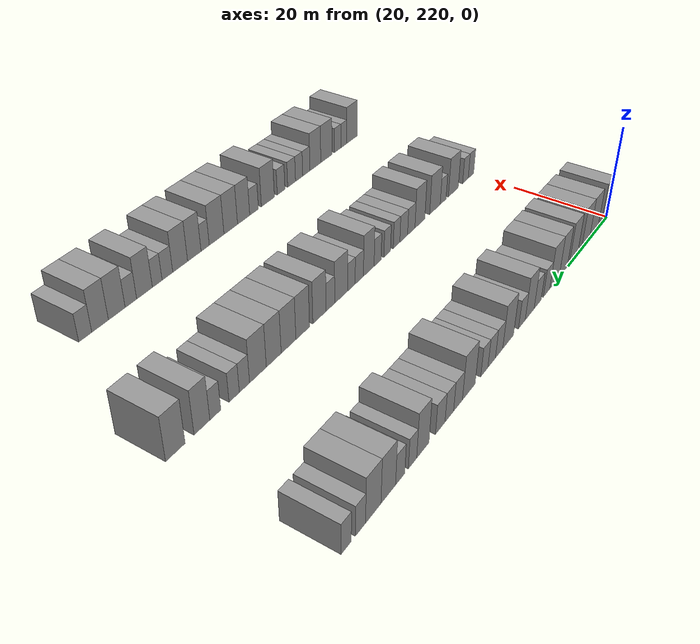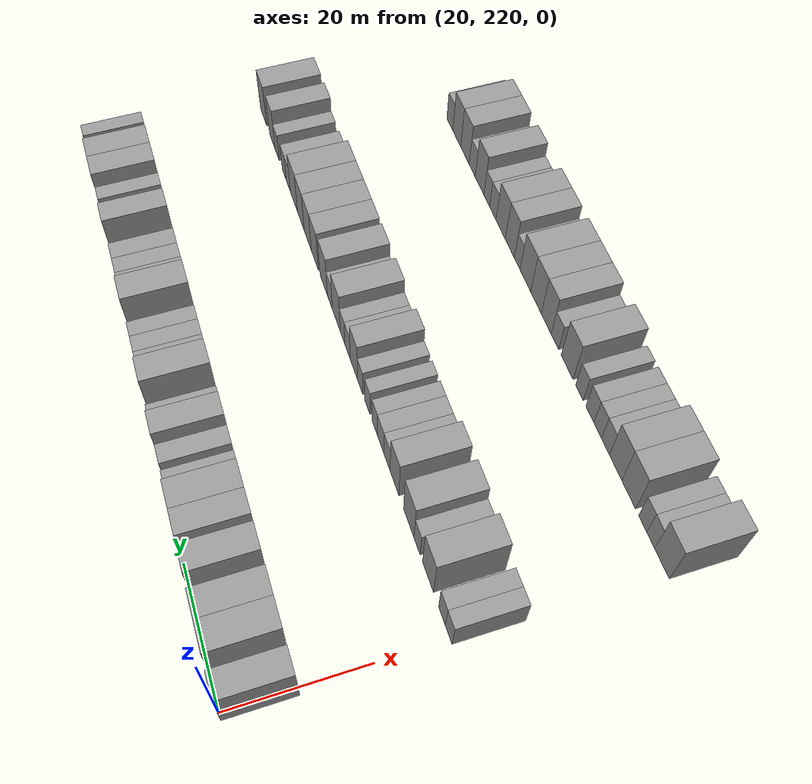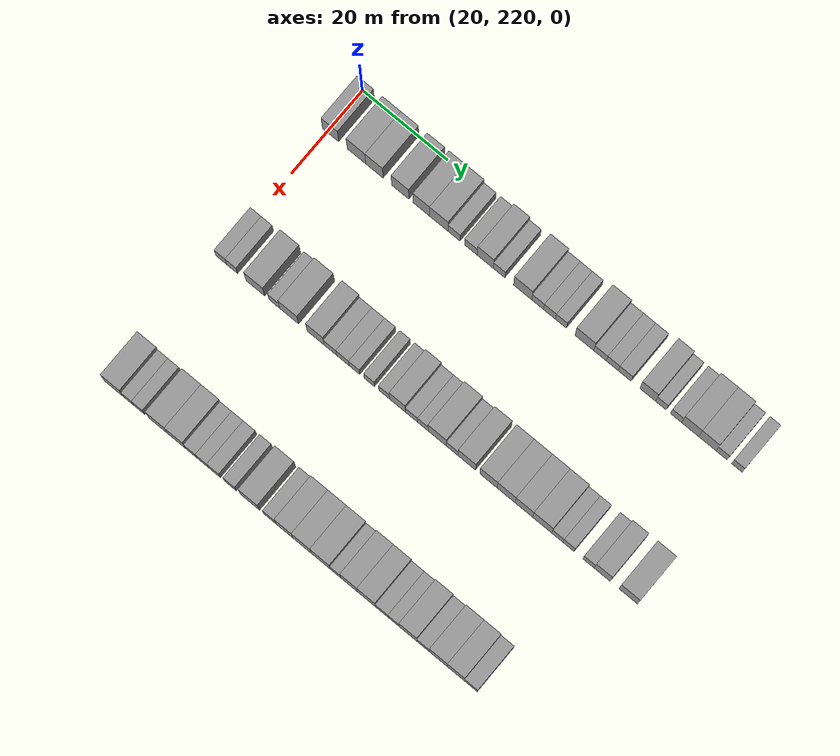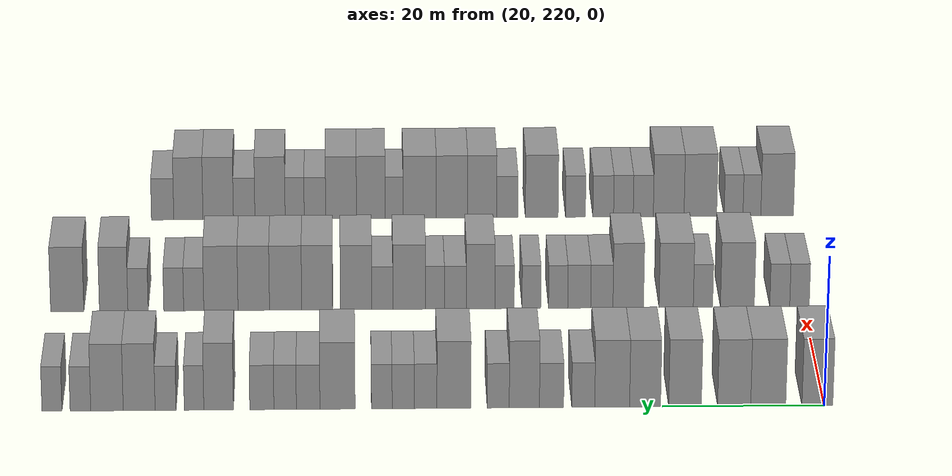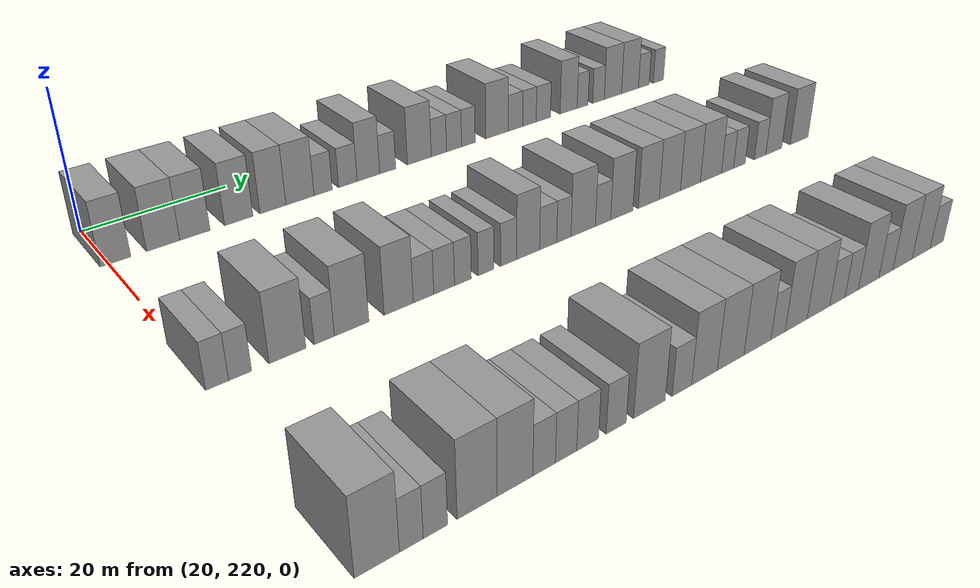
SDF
<sdf version="1.6">
 <world name="default">
  <model name="building_177">
   <static>1</static>
   <pose>25.0000 220.9204 0 0.000000 0.000000 0.000000</pose>
   <link name="link">
    <pose>0 0 4.50 0 0 0</pose>
    <collision name="collision"><geometry><box><size>10.0000 3.8029 9.0000</size></box></geometry></collision>
    <visual name="visual">
     <cast_shadows>0</cast_shadows>
     <geometry><box><size>10.0000 3.8029 9.0000</size></box></geometry>
     <material>
      <script>
       <uri>model://grey_wall/materials/scripts</uri>
       <uri>model://grey_wall/materials/textures</uri>
       <name>vrc/grey_wall</name>
      </script>
     </material>
    </visual>
   </link>
  </model>
  <model name="building_178">
   <static>1</static>
   <pose>25.0000 226.9856 0 0.000000 0.000000 0.000000</pose>
   <link name="link">
    <pose>0 0 4.50 0 0 0</pose>
    <collision name="collision"><geometry><box><size>10.0000 4.3275 9.0000</size></box></geometry></collision>
    <visual name="visual">
     <cast_shadows>0</cast_shadows>
     <geometry><box><size>10.0000 4.3275 9.0000</size></box></geometry>
     <material>
      <script>
       <uri>model://grey_wall/materials/scripts</uri>
       <uri>model://grey_wall/materials/textures</uri>
       <name>vrc/grey_wall</name>
      </script>
     </material>
    </visual>
   </link>
  </model>
  <model name="building_179">
   <static>1</static>
   <pose>25.0000 231.1897 0 0.000000 0.000000 0.000000</pose>
   <link name="link">
    <pose>0 0 4.50 0 0 0</pose>
    <collision name="collision"><geometry><box><size>10.0000 4.0806 9.0000</size></box></geometry></collision>
    <visual name="visual">
     <cast_shadows>0</cast_shadows>
     <geometry><box><size>10.0000 4.0806 9.0000</size></box></geometry>
     <material>
      <script>
       <uri>model://grey_wall/materials/scripts</uri>
       <uri>model://grey_wall/materials/textures</uri>
       <name>vrc/grey_wall</name>
      </script>
     </material>
    </visual>
   </link>
  </model>
  <model name="building_180">
   <static>1</static>
   <pose>25.0000 237.2449 0 0.000000 0.000000 0.000000</pose>
   <link name="link">
    <pose>0 0 4.50 0 0 0</pose>
    <collision name="collision"><geometry><box><size>10.0000 4.0298 9.0000</size></box></geometry></collision>
    <visual name="visual">
     <cast_shadows>0</cast_shadows>
     <geometry><box><size>10.0000 4.0298 9.0000</size></box></geometry>
     <material>
      <script>
       <uri>model://grey_wall/materials/scripts</uri>
       <uri>model://grey_wall/materials/textures</uri>
       <name>vrc/grey_wall</name>
      </script>
     </material>
    </visual>
   </link>
  </model>
  <model name="building_181">
   <static>1</static>
   <pose>25.0000 242.1710 0 0.000000 0.000000 0.000000</pose>
   <link name="link">
    <pose>0 0 4.50 0 0 0</pose>
    <collision name="collision"><geometry><box><size>10.0000 3.8224 9.0000</size></box></geometry></collision>
    <visual name="visual">
     <cast_shadows>0</cast_shadows>
     <geometry><box><size>10.0000 3.8224 9.0000</size></box></geometry>
     <material>
      <script>
       <uri>model://grey_wall/materials/scripts</uri>
       <uri>model://grey_wall/materials/textures</uri>
       <name>vrc/grey_wall</name>
      </script>
     </material>
    </visual>
   </link>
  </model>
  <model name="building_182">
   <static>1</static>
   <pose>25.0000 246.2288 0 0.000000 0.000000 0.000000</pose>
   <link name="link">
    <pose>0 0 4.50 0 0 0</pose>
    <collision name="collision"><geometry><box><size>10.0000 4.2931 9.0000</size></box></geometry></collision>
    <visual name="visual">
     <cast_shadows>0</cast_shadows>
     <geometry><box><size>10.0000 4.2931 9.0000</size></box></geometry>
     <material>
      <script>
       <uri>model://grey_wall/materials/scripts</uri>
       <uri>model://grey_wall/materials/textures</uri>
       <name>vrc/grey_wall</name>
      </script>
     </material>
    </visual>
   </link>
  </model>
  <model name="building_183">
   <static>1</static>
   <pose>25.0000 249.7904 0 0.000000 0.000000 0.000000</pose>
   <link name="link">
    <pose>0 0 3.00 0 0 0</pose>
    <collision name="collision"><geometry><box><size>10.0000 2.8302 6.0000</size></box></geometry></collision>
    <visual name="visual">
     <cast_shadows>0</cast_shadows>
     <geometry><box><size>10.0000 2.8302 6.0000</size></box></geometry>
     <material>
      <script>
       <uri>model://grey_wall/materials/scripts</uri>
       <uri>model://grey_wall/materials/textures</uri>
       <name>vrc/grey_wall</name>
      </script>
     </material>
    </visual>
   </link>
  </model>
  <model name="building_184">
   <static>1</static>
   <pose>25.0000 253.6952 0 0.000000 0.000000 0.000000</pose>
   <link name="link">
    <pose>0 0 3.00 0 0 0</pose>
    <collision name="collision"><geometry><box><size>10.0000 2.9796 6.0000</size></box></geometry></collision>
    <visual name="visual">
     <cast_shadows>0</cast_shadows>
     <geometry><box><size>10.0000 2.9796 6.0000</size></box></geometry>
     <material>
      <script>
       <uri>model://grey_wall/materials/scripts</uri>
       <uri>model://grey_wall/materials/textures</uri>
       <name>vrc/grey_wall</name>
      </script>
     </material>
    </visual>
   </link>
  </model>
  <model name="building_185">
   <static>1</static>
   <pose>25.0000 257.0476 0 0.000000 0.000000 0.000000</pose>
   <link name="link">
    <pose>0 0 4.50 0 0 0</pose>
    <collision name="collision"><geometry><box><size>10.0000 3.7251 9.0000</size></box></geometry></collision>
    <visual name="visual">
     <cast_shadows>0</cast_shadows>
     <geometry><box><size>10.0000 3.7251 9.0000</size></box></geometry>
     <material>
      <script>
       <uri>model://grey_wall/materials/scripts</uri>
       <uri>model://grey_wall/materials/textures</uri>
       <name>vrc/grey_wall</name>
      </script>
     </material>
    </visual>
   </link>
  </model>
  <model name="building_186">
   <static>1</static>
   <pose>25.0000 260.2636 0 0.000000 0.000000 0.000000</pose>
   <link name="link">
    <pose>0 0 3.00 0 0 0</pose>
    <collision name="collision"><geometry><box><size>10.0000 2.7068 6.0000</size></box></geometry></collision>
    <visual name="visual">
     <cast_shadows>0</cast_shadows>
     <geometry><box><size>10.0000 2.7068 6.0000</size></box></geometry>
     <material>
      <script>
       <uri>model://grey_wall/materials/scripts</uri>
       <uri>model://grey_wall/materials/textures</uri>
       <name>vrc/grey_wall</name>
      </script>
     </material>
    </visual>
   </link>
  </model>
  <model name="building_187">
   <static>1</static>
   <pose>25.0000 265.7108 0 0.000000 0.000000 0.000000</pose>
   <link name="link">
    <pose>0 0 4.50 0 0 0</pose>
    <collision name="collision"><geometry><box><size>10.0000 4.1877 9.0000</size></box></geometry></collision>
    <visual name="visual">
     <cast_shadows>0</cast_shadows>
     <geometry><box><size>10.0000 4.1877 9.0000</size></box></geometry>
     <material>
      <script>
       <uri>model://grey_wall/materials/scripts</uri>
       <uri>model://grey_wall/materials/textures</uri>
       <name>vrc/grey_wall</name>
      </script>
     </material>
    </visual>
   </link>
  </model>
  <model name="building_188">
   <static>1</static>
   <pose>25.0000 269.1883 0 0.000000 0.000000 0.000000</pose>
   <link name="link">
    <pose>0 0 3.00 0 0 0</pose>
    <collision name="collision"><geometry><box><size>10.0000 2.7673 6.0000</size></box></geometry></collision>
    <visual name="visual">
     <cast_shadows>0</cast_shadows>
     <geometry><box><size>10.0000 2.7673 6.0000</size></box></geometry>
     <material>
      <script>
       <uri>model://grey_wall/materials/scripts</uri>
       <uri>model://grey_wall/materials/textures</uri>
       <name>vrc/grey_wall</name>
      </script>
     </material>
    </visual>
   </link>
  </model>
  <model name="building_189">
   <static>1</static>
   <pose>25.0000 271.9453 0 0.000000 0.000000 0.000000</pose>
   <link name="link">
    <pose>0 0 3.00 0 0 0</pose>
    <collision name="collision"><geometry><box><size>10.0000 2.7468 6.0000</size></box></geometry></collision>
    <visual name="visual">
     <cast_shadows>0</cast_shadows>
     <geometry><box><size>10.0000 2.7468 6.0000</size></box></geometry>
     <material>
      <script>
       <uri>model://grey_wall/materials/scripts</uri>
       <uri>model://grey_wall/materials/textures</uri>
       <name>vrc/grey_wall</name>
      </script>
     </material>
    </visual>
   </link>
  </model>
  <model name="building_190">
   <static>1</static>
   <pose>25.0000 274.5946 0 0.000000 0.000000 0.000000</pose>
   <link name="link">
    <pose>0 0 3.00 0 0 0</pose>
    <collision name="collision"><geometry><box><size>10.0000 2.5517 6.0000</size></box></geometry></collision>
    <visual name="visual">
     <cast_shadows>0</cast_shadows>
     <geometry><box><size>10.0000 2.5517 6.0000</size></box></geometry>
     <material>
      <script>
       <uri>model://grey_wall/materials/scripts</uri>
       <uri>model://grey_wall/materials/textures</uri>
       <name>vrc/grey_wall</name>
      </script>
     </material>
    </visual>
   </link>
  </model>
  <model name="building_191">
   <static>1</static>
   <pose>25.0000 280.0390 0 0.000000 0.000000 0.000000</pose>
   <link name="link">
    <pose>0 0 4.50 0 0 0</pose>
    <collision name="collision"><geometry><box><size>10.0000 4.3372 9.0000</size></box></geometry></collision>
    <visual name="visual">
     <cast_shadows>0</cast_shadows>
     <geometry><box><size>10.0000 4.3372 9.0000</size></box></geometry>
     <material>
      <script>
       <uri>model://grey_wall/materials/scripts</uri>
       <uri>model://grey_wall/materials/textures</uri>
       <name>vrc/grey_wall</name>
      </script>
     </material>
    </visual>
   </link>
  </model>
  <model name="building_192">
   <static>1</static>
   <pose>25.0000 283.6564 0 0.000000 0.000000 0.000000</pose>
   <link name="link">
    <pose>0 0 3.00 0 0 0</pose>
    <collision name="collision"><geometry><box><size>10.0000 2.8976 6.0000</size></box></geometry></collision>
    <visual name="visual">
     <cast_shadows>0</cast_shadows>
     <geometry><box><size>10.0000 2.8976 6.0000</size></box></geometry>
     <material>
      <script>
       <uri>model://grey_wall/materials/scripts</uri>
       <uri>model://grey_wall/materials/textures</uri>
       <name>vrc/grey_wall</name>
      </script>
     </material>
    </visual>
   </link>
  </model>
  <model name="building_193">
   <static>1</static>
   <pose>25.0000 286.4851 0 0.000000 0.000000 0.000000</pose>
   <link name="link">
    <pose>0 0 3.00 0 0 0</pose>
    <collision name="collision"><geometry><box><size>10.0000 2.7598 6.0000</size></box></geometry></collision>
    <visual name="visual">
     <cast_shadows>0</cast_shadows>
     <geometry><box><size>10.0000 2.7598 6.0000</size></box></geometry>
     <material>
      <script>
       <uri>model://grey_wall/materials/scripts</uri>
       <uri>model://grey_wall/materials/textures</uri>
       <name>vrc/grey_wall</name>
      </script>
     </material>
    </visual>
   </link>
  </model>
  <model name="building_194">
   <static>1</static>
   <pose>25.0000 289.3492 0 0.000000 0.000000 0.000000</pose>
   <link name="link">
    <pose>0 0 3.00 0 0 0</pose>
    <collision name="collision"><geometry><box><size>10.0000 2.9684 6.0000</size></box></geometry></collision>
    <visual name="visual">
     <cast_shadows>0</cast_shadows>
     <geometry><box><size>10.0000 2.9684 6.0000</size></box></geometry>
     <material>
      <script>
       <uri>model://grey_wall/materials/scripts</uri>
       <uri>model://grey_wall/materials/textures</uri>
       <name>vrc/grey_wall</name>
      </script>
     </material>
    </visual>
   </link>
  </model>
  <model name="building_195">
   <static>1</static>
   <pose>25.0000 294.6551 0 0.000000 0.000000 0.000000</pose>
   <link name="link">
    <pose>0 0 4.50 0 0 0</pose>
    <collision name="collision"><geometry><box><size>10.0000 3.6434 9.0000</size></box></geometry></collision>
    <visual name="visual">
     <cast_shadows>0</cast_shadows>
     <geometry><box><size>10.0000 3.6434 9.0000</size></box></geometry>
     <material>
      <script>
       <uri>model://grey_wall/materials/scripts</uri>
       <uri>model://grey_wall/materials/textures</uri>
       <name>vrc/grey_wall</name>
      </script>
     </material>
    </visual>
   </link>
  </model>
  <model name="building_196">
   <static>1</static>
   <pose>25.0000 297.6793 0 0.000000 0.000000 0.000000</pose>
   <link name="link">
    <pose>0 0 3.00 0 0 0</pose>
    <collision name="collision"><geometry><box><size>10.0000 2.4050 6.0000</size></box></geometry></collision>
    <visual name="visual">
     <cast_shadows>0</cast_shadows>
     <geometry><box><size>10.0000 2.4050 6.0000</size></box></geometry>
     <material>
      <script>
       <uri>model://grey_wall/materials/scripts</uri>
       <uri>model://grey_wall/materials/textures</uri>
       <name>vrc/grey_wall</name>
      </script>
     </material>
    </visual>
   </link>
  </model>
  <model name="building_197">
   <static>1</static>
   <pose>25.0000 301.1719 0 0.000000 0.000000 0.000000</pose>
   <link name="link">
    <pose>0 0 3.00 0 0 0</pose>
    <collision name="collision"><geometry><box><size>10.0000 2.5803 6.0000</size></box></geometry></collision>
    <visual name="visual">
     <cast_shadows>0</cast_shadows>
     <geometry><box><size>10.0000 2.5803 6.0000</size></box></geometry>
     <material>
      <script>
       <uri>model://grey_wall/materials/scripts</uri>
       <uri>model://grey_wall/materials/textures</uri>
       <name>vrc/grey_wall</name>
      </script>
     </material>
    </visual>
   </link>
  </model>
  <model name="building_198">
   <static>1</static>
   <pose>25.0000 304.4214 0 0.000000 0.000000 0.000000</pose>
   <link name="link">
    <pose>0 0 4.50 0 0 0</pose>
    <collision name="collision"><geometry><box><size>10.0000 3.9188 9.0000</size></box></geometry></collision>
    <visual name="visual">
     <cast_shadows>0</cast_shadows>
     <geometry><box><size>10.0000 3.9188 9.0000</size></box></geometry>
     <material>
      <script>
       <uri>model://grey_wall/materials/scripts</uri>
       <uri>model://grey_wall/materials/textures</uri>
       <name>vrc/grey_wall</name>
      </script>
     </material>
    </visual>
   </link>
  </model>
  <model name="building_199">
   <static>1</static>
   <pose>25.0000 308.3749 0 0.000000 0.000000 0.000000</pose>
   <link name="link">
    <pose>0 0 4.50 0 0 0</pose>
    <collision name="collision"><geometry><box><size>10.0000 3.9881 9.0000</size></box></geometry></collision>
    <visual name="visual">
     <cast_shadows>0</cast_shadows>
     <geometry><box><size>10.0000 3.9881 9.0000</size></box></geometry>
     <material>
      <script>
       <uri>model://grey_wall/materials/scripts</uri>
       <uri>model://grey_wall/materials/textures</uri>
       <name>vrc/grey_wall</name>
      </script>
     </material>
    </visual>
   </link>
  </model>
  <model name="building_200">
   <static>1</static>
   <pose>25.0000 311.6359 0 0.000000 0.000000 0.000000</pose>
   <link name="link">
    <pose>0 0 3.00 0 0 0</pose>
    <collision name="collision"><geometry><box><size>10.0000 2.5339 6.0000</size></box></geometry></collision>
    <visual name="visual">
     <cast_shadows>0</cast_shadows>
     <geometry><box><size>10.0000 2.5339 6.0000</size></box></geometry>
     <material>
      <script>
       <uri>model://grey_wall/materials/scripts</uri>
       <uri>model://grey_wall/materials/textures</uri>
       <name>vrc/grey_wall</name>
      </script>
     </material>
    </visual>
   </link>
  </model>
  <model name="building_201">
   <static>1</static>
   <pose>25.0000 315.1301 0 0.000000 0.000000 0.000000</pose>
   <link name="link">
    <pose>0 0 3.00 0 0 0</pose>
    <collision name="collision"><geometry><box><size>10.0000 2.4544 6.0000</size></box></geometry></collision>
    <visual name="visual">
     <cast_shadows>0</cast_shadows>
     <geometry><box><size>10.0000 2.4544 6.0000</size></box></geometry>
     <material>
      <script>
       <uri>model://grey_wall/materials/scripts</uri>
       <uri>model://grey_wall/materials/textures</uri>
       <name>vrc/grey_wall</name>
      </script>
     </material>
    </visual>
   </link>
  </model>
  <model name="building_417">
   <static>1</static>
   <pose>55.0000 220.5504 0 0.000000 0.000000 0.000000</pose>
   <link name="link">
    <pose>0 0 3.00 0 0 0</pose>
    <collision name="collision"><geometry><box><size>10.0000 2.5222 6.0000</size></box></geometry></collision>
    <visual name="visual">
     <cast_shadows>0</cast_shadows>
     <geometry><box><size>10.0000 2.5222 6.0000</size></box></geometry>
     <material>
      <script>
       <uri>model://grey_wall/materials/scripts</uri>
       <uri>model://grey_wall/materials/textures</uri>
       <name>vrc/grey_wall</name>
      </script>
     </material>
    </visual>
   </link>
  </model>
  <model name="building_418">
   <static>1</static>
   <pose>55.0000 223.0967 0 0.000000 0.000000 0.000000</pose>
   <link name="link">
    <pose>0 0 3.00 0 0 0</pose>
    <collision name="collision"><geometry><box><size>10.0000 2.5703 6.0000</size></box></geometry></collision>
    <visual name="visual">
     <cast_shadows>0</cast_shadows>
     <geometry><box><size>10.0000 2.5703 6.0000</size></box></geometry>
     <material>
      <script>
       <uri>model://grey_wall/materials/scripts</uri>
       <uri>model://grey_wall/materials/textures</uri>
       <name>vrc/grey_wall</name>
      </script>
     </material>
    </visual>
   </link>
  </model>
  <model name="building_419">
   <static>1</static>
   <pose>55.0000 228.5635 0 0.000000 0.000000 0.000000</pose>
   <link name="link">
    <pose>0 0 4.50 0 0 0</pose>
    <collision name="collision"><geometry><box><size>10.0000 4.3633 9.0000</size></box></geometry></collision>
    <visual name="visual">
     <cast_shadows>0</cast_shadows>
     <geometry><box><size>10.0000 4.3633 9.0000</size></box></geometry>
     <material>
      <script>
       <uri>model://grey_wall/materials/scripts</uri>
       <uri>model://grey_wall/materials/textures</uri>
       <name>vrc/grey_wall</name>
      </script>
     </material>
    </visual>
   </link>
  </model>
  <model name="building_420">
   <static>1</static>
   <pose>55.0000 232.9952 0 0.000000 0.000000 0.000000</pose>
   <link name="link">
    <pose>0 0 3.00 0 0 0</pose>
    <collision name="collision"><geometry><box><size>10.0000 2.5002 6.0000</size></box></geometry></collision>
    <visual name="visual">
     <cast_shadows>0</cast_shadows>
     <geometry><box><size>10.0000 2.5002 6.0000</size></box></geometry>
     <material>
      <script>
       <uri>model://grey_wall/materials/scripts</uri>
       <uri>model://grey_wall/materials/textures</uri>
       <name>vrc/grey_wall</name>
      </script>
     </material>
    </visual>
   </link>
  </model>
  <model name="building_421">
   <static>1</static>
   <pose>55.0000 236.4503 0 0.000000 0.000000 0.000000</pose>
   <link name="link">
    <pose>0 0 4.50 0 0 0</pose>
    <collision name="collision"><geometry><box><size>10.0000 4.4100 9.0000</size></box></geometry></collision>
    <visual name="visual">
     <cast_shadows>0</cast_shadows>
     <geometry><box><size>10.0000 4.4100 9.0000</size></box></geometry>
     <material>
      <script>
       <uri>model://grey_wall/materials/scripts</uri>
       <uri>model://grey_wall/materials/textures</uri>
       <name>vrc/grey_wall</name>
      </script>
     </material>
    </visual>
   </link>
  </model>
  <model name="building_422">
   <static>1</static>
   <pose>55.0000 242.6285 0 0.000000 0.000000 0.000000</pose>
   <link name="link">
    <pose>0 0 4.50 0 0 0</pose>
    <collision name="collision"><geometry><box><size>10.0000 3.9464 9.0000</size></box></geometry></collision>
    <visual name="visual">
     <cast_shadows>0</cast_shadows>
     <geometry><box><size>10.0000 3.9464 9.0000</size></box></geometry>
     <material>
      <script>
       <uri>model://grey_wall/materials/scripts</uri>
       <uri>model://grey_wall/materials/textures</uri>
       <name>vrc/grey_wall</name>
      </script>
     </material>
    </visual>
   </link>
  </model>
  <model name="building_423">
   <static>1</static>
   <pose>55.0000 246.0341 0 0.000000 0.000000 0.000000</pose>
   <link name="link">
    <pose>0 0 3.00 0 0 0</pose>
    <collision name="collision"><geometry><box><size>10.0000 2.8647 6.0000</size></box></geometry></collision>
    <visual name="visual">
     <cast_shadows>0</cast_shadows>
     <geometry><box><size>10.0000 2.8647 6.0000</size></box></geometry>
     <material>
      <script>
       <uri>model://grey_wall/materials/scripts</uri>
       <uri>model://grey_wall/materials/textures</uri>
       <name>vrc/grey_wall</name>
      </script>
     </material>
    </visual>
   </link>
  </model>
  <model name="building_424">
   <static>1</static>
   <pose>55.0000 248.9469 0 0.000000 0.000000 0.000000</pose>
   <link name="link">
    <pose>0 0 3.00 0 0 0</pose>
    <collision name="collision"><geometry><box><size>10.0000 2.9608 6.0000</size></box></geometry></collision>
    <visual name="visual">
     <cast_shadows>0</cast_shadows>
     <geometry><box><size>10.0000 2.9608 6.0000</size></box></geometry>
     <material>
      <script>
       <uri>model://grey_wall/materials/scripts</uri>
       <uri>model://grey_wall/materials/textures</uri>
       <name>vrc/grey_wall</name>
      </script>
     </material>
    </visual>
   </link>
  </model>
  <model name="building_425">
   <static>1</static>
   <pose>55.0000 251.6619 0 0.000000 0.000000 0.000000</pose>
   <link name="link">
    <pose>0 0 3.00 0 0 0</pose>
    <collision name="collision"><geometry><box><size>10.0000 2.4691 6.0000</size></box></geometry></collision>
    <visual name="visual">
     <cast_shadows>0</cast_shadows>
     <geometry><box><size>10.0000 2.4691 6.0000</size></box></geometry>
     <material>
      <script>
       <uri>model://grey_wall/materials/scripts</uri>
       <uri>model://grey_wall/materials/textures</uri>
       <name>vrc/grey_wall</name>
      </script>
     </material>
    </visual>
   </link>
  </model>
  <model name="building_426">
   <static>1</static>
   <pose>55.0000 255.1031 0 0.000000 0.000000 0.000000</pose>
   <link name="link">
    <pose>0 0 3.00 0 0 0</pose>
    <collision name="collision"><geometry><box><size>10.0000 2.4134 6.0000</size></box></geometry></collision>
    <visual name="visual">
     <cast_shadows>0</cast_shadows>
     <geometry><box><size>10.0000 2.4134 6.0000</size></box></geometry>
     <material>
      <script>
       <uri>model://grey_wall/materials/scripts</uri>
       <uri>model://grey_wall/materials/textures</uri>
       <name>vrc/grey_wall</name>
      </script>
     </material>
    </visual>
   </link>
  </model>
  <model name="building_427">
   <static>1</static>
   <pose>55.0000 258.5602 0 0.000000 0.000000 0.000000</pose>
   <link name="link">
    <pose>0 0 3.00 0 0 0</pose>
    <collision name="collision"><geometry><box><size>10.0000 2.5009 6.0000</size></box></geometry></collision>
    <visual name="visual">
     <cast_shadows>0</cast_shadows>
     <geometry><box><size>10.0000 2.5009 6.0000</size></box></geometry>
     <material>
      <script>
       <uri>model://grey_wall/materials/scripts</uri>
       <uri>model://grey_wall/materials/textures</uri>
       <name>vrc/grey_wall</name>
      </script>
     </material>
    </visual>
   </link>
  </model>
  <model name="building_428">
   <static>1</static>
   <pose>55.0000 261.6528 0 0.000000 0.000000 0.000000</pose>
   <link name="link">
    <pose>0 0 4.50 0 0 0</pose>
    <collision name="collision"><geometry><box><size>10.0000 3.6841 9.0000</size></box></geometry></collision>
    <visual name="visual">
     <cast_shadows>0</cast_shadows>
     <geometry><box><size>10.0000 3.6841 9.0000</size></box></geometry>
     <material>
      <script>
       <uri>model://grey_wall/materials/scripts</uri>
       <uri>model://grey_wall/materials/textures</uri>
       <name>vrc/grey_wall</name>
      </script>
     </material>
    </visual>
   </link>
  </model>
  <model name="building_429">
   <static>1</static>
   <pose>55.0000 264.8965 0 0.000000 0.000000 0.000000</pose>
   <link name="link">
    <pose>0 0 3.00 0 0 0</pose>
    <collision name="collision"><geometry><box><size>10.0000 2.8034 6.0000</size></box></geometry></collision>
    <visual name="visual">
     <cast_shadows>0</cast_shadows>
     <geometry><box><size>10.0000 2.8034 6.0000</size></box></geometry>
     <material>
      <script>
       <uri>model://grey_wall/materials/scripts</uri>
       <uri>model://grey_wall/materials/textures</uri>
       <name>vrc/grey_wall</name>
      </script>
     </material>
    </visual>
   </link>
  </model>
  <model name="building_430">
   <static>1</static>
   <pose>55.0000 267.5002 0 0.000000 0.000000 0.000000</pose>
   <link name="link">
    <pose>0 0 3.00 0 0 0</pose>
    <collision name="collision"><geometry><box><size>10.0000 2.4039 6.0000</size></box></geometry></collision>
    <visual name="visual">
     <cast_shadows>0</cast_shadows>
     <geometry><box><size>10.0000 2.4039 6.0000</size></box></geometry>
     <material>
      <script>
       <uri>model://grey_wall/materials/scripts</uri>
       <uri>model://grey_wall/materials/textures</uri>
       <name>vrc/grey_wall</name>
      </script>
     </material>
    </visual>
   </link>
  </model>
  <model name="building_431">
   <static>1</static>
   <pose>55.0000 270.8150 0 0.000000 0.000000 0.000000</pose>
   <link name="link">
    <pose>0 0 4.50 0 0 0</pose>
    <collision name="collision"><geometry><box><size>10.0000 4.2258 9.0000</size></box></geometry></collision>
    <visual name="visual">
     <cast_shadows>0</cast_shadows>
     <geometry><box><size>10.0000 4.2258 9.0000</size></box></geometry>
     <material>
      <script>
       <uri>model://grey_wall/materials/scripts</uri>
       <uri>model://grey_wall/materials/textures</uri>
       <name>vrc/grey_wall</name>
      </script>
     </material>
    </visual>
   </link>
  </model>
  <model name="building_432">
   <static>1</static>
   <pose>55.0000 274.2824 0 0.000000 0.000000 0.000000</pose>
   <link name="link">
    <pose>0 0 3.00 0 0 0</pose>
    <collision name="collision"><geometry><box><size>10.0000 2.7090 6.0000</size></box></geometry></collision>
    <visual name="visual">
     <cast_shadows>0</cast_shadows>
     <geometry><box><size>10.0000 2.7090 6.0000</size></box></geometry>
     <material>
      <script>
       <uri>model://grey_wall/materials/scripts</uri>
       <uri>model://grey_wall/materials/textures</uri>
       <name>vrc/grey_wall</name>
      </script>
     </material>
    </visual>
   </link>
  </model>
  <model name="building_433">
   <static>1</static>
   <pose>55.0000 277.6571 0 0.000000 0.000000 0.000000</pose>
   <link name="link">
    <pose>0 0 4.50 0 0 0</pose>
    <collision name="collision"><geometry><box><size>10.0000 4.0405 9.0000</size></box></geometry></collision>
    <visual name="visual">
     <cast_shadows>0</cast_shadows>
     <geometry><box><size>10.0000 4.0405 9.0000</size></box></geometry>
     <material>
      <script>
       <uri>model://grey_wall/materials/scripts</uri>
       <uri>model://grey_wall/materials/textures</uri>
       <name>vrc/grey_wall</name>
      </script>
     </material>
    </visual>
   </link>
  </model>
  <model name="building_434">
   <static>1</static>
   <pose>55.0000 282.6655 0 0.000000 0.000000 0.000000</pose>
   <link name="link">
    <pose>0 0 4.50 0 0 0</pose>
    <collision name="collision"><geometry><box><size>10.0000 3.9763 9.0000</size></box></geometry></collision>
    <visual name="visual">
     <cast_shadows>0</cast_shadows>
     <geometry><box><size>10.0000 3.9763 9.0000</size></box></geometry>
     <material>
      <script>
       <uri>model://grey_wall/materials/scripts</uri>
       <uri>model://grey_wall/materials/textures</uri>
       <name>vrc/grey_wall</name>
      </script>
     </material>
    </visual>
   </link>
  </model>
  <model name="building_435">
   <static>1</static>
   <pose>55.0000 286.7268 0 0.000000 0.000000 0.000000</pose>
   <link name="link">
    <pose>0 0 4.50 0 0 0</pose>
    <collision name="collision"><geometry><box><size>10.0000 4.1462 9.0000</size></box></geometry></collision>
    <visual name="visual">
     <cast_shadows>0</cast_shadows>
     <geometry><box><size>10.0000 4.1462 9.0000</size></box></geometry>
     <material>
      <script>
       <uri>model://grey_wall/materials/scripts</uri>
       <uri>model://grey_wall/materials/textures</uri>
       <name>vrc/grey_wall</name>
      </script>
     </material>
    </visual>
   </link>
  </model>
  <model name="building_436">
   <static>1</static>
   <pose>55.0000 290.8235 0 0.000000 0.000000 0.000000</pose>
   <link name="link">
    <pose>0 0 4.50 0 0 0</pose>
    <collision name="collision"><geometry><box><size>10.0000 4.0472 9.0000</size></box></geometry></collision>
    <visual name="visual">
     <cast_shadows>0</cast_shadows>
     <geometry><box><size>10.0000 4.0472 9.0000</size></box></geometry>
     <material>
      <script>
       <uri>model://grey_wall/materials/scripts</uri>
       <uri>model://grey_wall/materials/textures</uri>
       <name>vrc/grey_wall</name>
      </script>
     </material>
    </visual>
   </link>
  </model>
  <model name="building_437">
   <static>1</static>
   <pose>55.0000 295.0451 0 0.000000 0.000000 0.000000</pose>
   <link name="link">
    <pose>0 0 4.50 0 0 0</pose>
    <collision name="collision"><geometry><box><size>10.0000 4.3959 9.0000</size></box></geometry></collision>
    <visual name="visual">
     <cast_shadows>0</cast_shadows>
     <geometry><box><size>10.0000 4.3959 9.0000</size></box></geometry>
     <material>
      <script>
       <uri>model://grey_wall/materials/scripts</uri>
       <uri>model://grey_wall/materials/textures</uri>
       <name>vrc/grey_wall</name>
      </script>
     </material>
    </visual>
   </link>
  </model>
  <model name="building_438">
   <static>1</static>
   <pose>55.0000 298.5359 0 0.000000 0.000000 0.000000</pose>
   <link name="link">
    <pose>0 0 3.00 0 0 0</pose>
    <collision name="collision"><geometry><box><size>10.0000 2.5858 6.0000</size></box></geometry></collision>
    <visual name="visual">
     <cast_shadows>0</cast_shadows>
     <geometry><box><size>10.0000 2.5858 6.0000</size></box></geometry>
     <material>
      <script>
       <uri>model://grey_wall/materials/scripts</uri>
       <uri>model://grey_wall/materials/textures</uri>
       <name>vrc/grey_wall</name>
      </script>
     </material>
    </visual>
   </link>
  </model>
  <model name="building_439">
   <static>1</static>
   <pose>55.0000 301.1053 0 0.000000 0.000000 0.000000</pose>
   <link name="link">
    <pose>0 0 3.00 0 0 0</pose>
    <collision name="collision"><geometry><box><size>10.0000 2.5530 6.0000</size></box></geometry></collision>
    <visual name="visual">
     <cast_shadows>0</cast_shadows>
     <geometry><box><size>10.0000 2.5530 6.0000</size></box></geometry>
     <material>
      <script>
       <uri>model://grey_wall/materials/scripts</uri>
       <uri>model://grey_wall/materials/textures</uri>
       <name>vrc/grey_wall</name>
      </script>
     </material>
    </visual>
   </link>
  </model>
  <model name="building_440">
   <static>1</static>
   <pose>55.0000 305.6864 0 0.000000 0.000000 0.000000</pose>
   <link name="link">
    <pose>0 0 3.00 0 0 0</pose>
    <collision name="collision"><geometry><box><size>10.0000 2.6091 6.0000</size></box></geometry></collision>
    <visual name="visual">
     <cast_shadows>0</cast_shadows>
     <geometry><box><size>10.0000 2.6091 6.0000</size></box></geometry>
     <material>
      <script>
       <uri>model://grey_wall/materials/scripts</uri>
       <uri>model://grey_wall/materials/textures</uri>
       <name>vrc/grey_wall</name>
      </script>
     </material>
    </visual>
   </link>
  </model>
  <model name="building_441">
   <static>1</static>
   <pose>55.0000 308.8178 0 0.000000 0.000000 0.000000</pose>
   <link name="link">
    <pose>0 0 4.50 0 0 0</pose>
    <collision name="collision"><geometry><box><size>10.0000 3.6537 9.0000</size></box></geometry></collision>
    <visual name="visual">
     <cast_shadows>0</cast_shadows>
     <geometry><box><size>10.0000 3.6537 9.0000</size></box></geometry>
     <material>
      <script>
       <uri>model://grey_wall/materials/scripts</uri>
       <uri>model://grey_wall/materials/textures</uri>
       <name>vrc/grey_wall</name>
      </script>
     </material>
    </visual>
   </link>
  </model>
  <model name="building_442">
   <static>1</static>
   <pose>55.0000 314.7757 0 0.000000 0.000000 0.000000</pose>
   <link name="link">
    <pose>0 0 4.50 0 0 0</pose>
    <collision name="collision"><geometry><box><size>10.0000 4.2621 9.0000</size></box></geometry></collision>
    <visual name="visual">
     <cast_shadows>0</cast_shadows>
     <geometry><box><size>10.0000 4.2621 9.0000</size></box></geometry>
     <material>
      <script>
       <uri>model://grey_wall/materials/scripts</uri>
       <uri>model://grey_wall/materials/textures</uri>
       <name>vrc/grey_wall</name>
      </script>
     </material>
    </visual>
   </link>
  </model>
  <model name="building_655">
   <static>1</static>
   <pose>85.0000 220.9758 0 0.000000 0.000000 0.000000</pose>
   <link name="link">
    <pose>0 0 4.50 0 0 0</pose>
    <collision name="collision"><geometry><box><size>10.0000 4.3943 9.0000</size></box></geometry></collision>
    <visual name="visual">
     <cast_shadows>0</cast_shadows>
     <geometry><box><size>10.0000 4.3943 9.0000</size></box></geometry>
     <material>
      <script>
       <uri>model://grey_wall/materials/scripts</uri>
       <uri>model://grey_wall/materials/textures</uri>
       <name>vrc/grey_wall</name>
      </script>
     </material>
    </visual>
   </link>
  </model>
  <model name="building_656">
   <static>1</static>
   <pose>85.0000 224.3748 0 0.000000 0.000000 0.000000</pose>
   <link name="link">
    <pose>0 0 3.00 0 0 0</pose>
    <collision name="collision"><geometry><box><size>10.0000 2.4038 6.0000</size></box></geometry></collision>
    <visual name="visual">
     <cast_shadows>0</cast_shadows>
     <geometry><box><size>10.0000 2.4038 6.0000</size></box></geometry>
     <material>
      <script>
       <uri>model://grey_wall/materials/scripts</uri>
       <uri>model://grey_wall/materials/textures</uri>
       <name>vrc/grey_wall</name>
      </script>
     </material>
    </visual>
   </link>
  </model>
  <model name="building_657">
   <static>1</static>
   <pose>85.0000 226.8430 0 0.000000 0.000000 0.000000</pose>
   <link name="link">
    <pose>0 0 3.00 0 0 0</pose>
    <collision name="collision"><geometry><box><size>10.0000 2.5325 6.0000</size></box></geometry></collision>
    <visual name="visual">
     <cast_shadows>0</cast_shadows>
     <geometry><box><size>10.0000 2.5325 6.0000</size></box></geometry>
     <material>
      <script>
       <uri>model://grey_wall/materials/scripts</uri>
       <uri>model://grey_wall/materials/textures</uri>
       <name>vrc/grey_wall</name>
      </script>
     </material>
    </visual>
   </link>
  </model>
  <model name="building_658">
   <static>1</static>
   <pose>85.0000 231.3096 0 0.000000 0.000000 0.000000</pose>
   <link name="link">
    <pose>0 0 4.50 0 0 0</pose>
    <collision name="collision"><geometry><box><size>10.0000 4.4006 9.0000</size></box></geometry></collision>
    <visual name="visual">
     <cast_shadows>0</cast_shadows>
     <geometry><box><size>10.0000 4.4006 9.0000</size></box></geometry>
     <material>
      <script>
       <uri>model://grey_wall/materials/scripts</uri>
       <uri>model://grey_wall/materials/textures</uri>
       <name>vrc/grey_wall</name>
      </script>
     </material>
    </visual>
   </link>
  </model>
  <model name="building_659">
   <static>1</static>
   <pose>85.0000 235.5748 0 0.000000 0.000000 0.000000</pose>
   <link name="link">
    <pose>0 0 4.50 0 0 0</pose>
    <collision name="collision"><geometry><box><size>10.0000 4.1298 9.0000</size></box></geometry></collision>
    <visual name="visual">
     <cast_shadows>0</cast_shadows>
     <geometry><box><size>10.0000 4.1298 9.0000</size></box></geometry>
     <material>
      <script>
       <uri>model://grey_wall/materials/scripts</uri>
       <uri>model://grey_wall/materials/textures</uri>
       <name>vrc/grey_wall</name>
      </script>
     </material>
    </visual>
   </link>
  </model>
  <model name="building_660">
   <static>1</static>
   <pose>85.0000 238.9903 0 0.000000 0.000000 0.000000</pose>
   <link name="link">
    <pose>0 0 3.00 0 0 0</pose>
    <collision name="collision"><geometry><box><size>10.0000 2.7012 6.0000</size></box></geometry></collision>
    <visual name="visual">
     <cast_shadows>0</cast_shadows>
     <geometry><box><size>10.0000 2.7012 6.0000</size></box></geometry>
     <material>
      <script>
       <uri>model://grey_wall/materials/scripts</uri>
       <uri>model://grey_wall/materials/textures</uri>
       <name>vrc/grey_wall</name>
      </script>
     </material>
    </visual>
   </link>
  </model>
  <model name="building_661">
   <static>1</static>
   <pose>85.0000 241.6601 0 0.000000 0.000000 0.000000</pose>
   <link name="link">
    <pose>0 0 3.00 0 0 0</pose>
    <collision name="collision"><geometry><box><size>10.0000 2.6384 6.0000</size></box></geometry></collision>
    <visual name="visual">
     <cast_shadows>0</cast_shadows>
     <geometry><box><size>10.0000 2.6384 6.0000</size></box></geometry>
     <material>
      <script>
       <uri>model://grey_wall/materials/scripts</uri>
       <uri>model://grey_wall/materials/textures</uri>
       <name>vrc/grey_wall</name>
      </script>
     </material>
    </visual>
   </link>
  </model>
  <model name="building_662">
   <static>1</static>
   <pose>85.0000 244.3725 0 0.000000 0.000000 0.000000</pose>
   <link name="link">
    <pose>0 0 3.00 0 0 0</pose>
    <collision name="collision"><geometry><box><size>10.0000 2.7863 6.0000</size></box></geometry></collision>
    <visual name="visual">
     <cast_shadows>0</cast_shadows>
     <geometry><box><size>10.0000 2.7863 6.0000</size></box></geometry>
     <material>
      <script>
       <uri>model://grey_wall/materials/scripts</uri>
       <uri>model://grey_wall/materials/textures</uri>
       <name>vrc/grey_wall</name>
      </script>
     </material>
    </visual>
   </link>
  </model>
  <model name="building_663">
   <static>1</static>
   <pose>85.0000 248.1005 0 0.000000 0.000000 0.000000</pose>
   <link name="link">
    <pose>0 0 3.00 0 0 0</pose>
    <collision name="collision"><geometry><box><size>10.0000 2.6698 6.0000</size></box></geometry></collision>
    <visual name="visual">
     <cast_shadows>0</cast_shadows>
     <geometry><box><size>10.0000 2.6698 6.0000</size></box></geometry>
     <material>
      <script>
       <uri>model://grey_wall/materials/scripts</uri>
       <uri>model://grey_wall/materials/textures</uri>
       <name>vrc/grey_wall</name>
      </script>
     </material>
    </visual>
   </link>
  </model>
  <model name="building_664">
   <static>1</static>
   <pose>85.0000 252.6368 0 0.000000 0.000000 0.000000</pose>
   <link name="link">
    <pose>0 0 4.50 0 0 0</pose>
    <collision name="collision"><geometry><box><size>10.0000 4.4028 9.0000</size></box></geometry></collision>
    <visual name="visual">
     <cast_shadows>0</cast_shadows>
     <geometry><box><size>10.0000 4.4028 9.0000</size></box></geometry>
     <material>
      <script>
       <uri>model://grey_wall/materials/scripts</uri>
       <uri>model://grey_wall/materials/textures</uri>
       <name>vrc/grey_wall</name>
      </script>
     </material>
    </visual>
   </link>
  </model>
  <model name="building_665">
   <static>1</static>
   <pose>85.0000 257.2654 0 0.000000 0.000000 0.000000</pose>
   <link name="link">
    <pose>0 0 3.00 0 0 0</pose>
    <collision name="collision"><geometry><box><size>10.0000 2.8544 6.0000</size></box></geometry></collision>
    <visual name="visual">
     <cast_shadows>0</cast_shadows>
     <geometry><box><size>10.0000 2.8544 6.0000</size></box></geometry>
     <material>
      <script>
       <uri>model://grey_wall/materials/scripts</uri>
       <uri>model://grey_wall/materials/textures</uri>
       <name>vrc/grey_wall</name>
      </script>
     </material>
    </visual>
   </link>
  </model>
  <model name="building_666">
   <static>1</static>
   <pose>85.0000 260.6470 0 0.000000 0.000000 0.000000</pose>
   <link name="link">
    <pose>0 0 4.50 0 0 0</pose>
    <collision name="collision"><geometry><box><size>10.0000 3.9089 9.0000</size></box></geometry></collision>
    <visual name="visual">
     <cast_shadows>0</cast_shadows>
     <geometry><box><size>10.0000 3.9089 9.0000</size></box></geometry>
     <material>
      <script>
       <uri>model://grey_wall/materials/scripts</uri>
       <uri>model://grey_wall/materials/textures</uri>
       <name>vrc/grey_wall</name>
      </script>
     </material>
    </visual>
   </link>
  </model>
  <model name="building_667">
   <static>1</static>
   <pose>85.0000 264.7070 0 0.000000 0.000000 0.000000</pose>
   <link name="link">
    <pose>0 0 4.50 0 0 0</pose>
    <collision name="collision"><geometry><box><size>10.0000 4.2112 9.0000</size></box></geometry></collision>
    <visual name="visual">
     <cast_shadows>0</cast_shadows>
     <geometry><box><size>10.0000 4.2112 9.0000</size></box></geometry>
     <material>
      <script>
       <uri>model://grey_wall/materials/scripts</uri>
       <uri>model://grey_wall/materials/textures</uri>
       <name>vrc/grey_wall</name>
      </script>
     </material>
    </visual>
   </link>
  </model>
  <model name="building_668">
   <static>1</static>
   <pose>85.0000 269.0358 0 0.000000 0.000000 0.000000</pose>
   <link name="link">
    <pose>0 0 4.50 0 0 0</pose>
    <collision name="collision"><geometry><box><size>10.0000 4.4464 9.0000</size></box></geometry></collision>
    <visual name="visual">
     <cast_shadows>0</cast_shadows>
     <geometry><box><size>10.0000 4.4464 9.0000</size></box></geometry>
     <material>
      <script>
       <uri>model://grey_wall/materials/scripts</uri>
       <uri>model://grey_wall/materials/textures</uri>
       <name>vrc/grey_wall</name>
      </script>
     </material>
    </visual>
   </link>
  </model>
  <model name="building_669">
   <static>1</static>
   <pose>85.0000 272.4611 0 0.000000 0.000000 0.000000</pose>
   <link name="link">
    <pose>0 0 3.00 0 0 0</pose>
    <collision name="collision"><geometry><box><size>10.0000 2.4040 6.0000</size></box></geometry></collision>
    <visual name="visual">
     <cast_shadows>0</cast_shadows>
     <geometry><box><size>10.0000 2.4040 6.0000</size></box></geometry>
     <material>
      <script>
       <uri>model://grey_wall/materials/scripts</uri>
       <uri>model://grey_wall/materials/textures</uri>
       <name>vrc/grey_wall</name>
      </script>
     </material>
    </visual>
   </link>
  </model>
  <model name="building_670">
   <static>1</static>
   <pose>85.0000 275.5911 0 0.000000 0.000000 0.000000</pose>
   <link name="link">
    <pose>0 0 4.50 0 0 0</pose>
    <collision name="collision"><geometry><box><size>10.0000 3.8561 9.0000</size></box></geometry></collision>
    <visual name="visual">
     <cast_shadows>0</cast_shadows>
     <geometry><box><size>10.0000 3.8561 9.0000</size></box></geometry>
     <material>
      <script>
       <uri>model://grey_wall/materials/scripts</uri>
       <uri>model://grey_wall/materials/textures</uri>
       <name>vrc/grey_wall</name>
      </script>
     </material>
    </visual>
   </link>
  </model>
  <model name="building_671">
   <static>1</static>
   <pose>85.0000 279.5836 0 0.000000 0.000000 0.000000</pose>
   <link name="link">
    <pose>0 0 4.50 0 0 0</pose>
    <collision name="collision"><geometry><box><size>10.0000 4.1289 9.0000</size></box></geometry></collision>
    <visual name="visual">
     <cast_shadows>0</cast_shadows>
     <geometry><box><size>10.0000 4.1289 9.0000</size></box></geometry>
     <material>
      <script>
       <uri>model://grey_wall/materials/scripts</uri>
       <uri>model://grey_wall/materials/textures</uri>
       <name>vrc/grey_wall</name>
      </script>
     </material>
    </visual>
   </link>
  </model>
  <model name="building_672">
   <static>1</static>
   <pose>85.0000 283.0912 0 0.000000 0.000000 0.000000</pose>
   <link name="link">
    <pose>0 0 3.00 0 0 0</pose>
    <collision name="collision"><geometry><box><size>10.0000 2.8863 6.0000</size></box></geometry></collision>
    <visual name="visual">
     <cast_shadows>0</cast_shadows>
     <geometry><box><size>10.0000 2.8863 6.0000</size></box></geometry>
     <material>
      <script>
       <uri>model://grey_wall/materials/scripts</uri>
       <uri>model://grey_wall/materials/textures</uri>
       <name>vrc/grey_wall</name>
      </script>
     </material>
    </visual>
   </link>
  </model>
  <model name="building_673">
   <static>1</static>
   <pose>85.0000 285.8148 0 0.000000 0.000000 0.000000</pose>
   <link name="link">
    <pose>0 0 3.00 0 0 0</pose>
    <collision name="collision"><geometry><box><size>10.0000 2.5607 6.0000</size></box></geometry></collision>
    <visual name="visual">
     <cast_shadows>0</cast_shadows>
     <geometry><box><size>10.0000 2.5607 6.0000</size></box></geometry>
     <material>
      <script>
       <uri>model://grey_wall/materials/scripts</uri>
       <uri>model://grey_wall/materials/textures</uri>
       <name>vrc/grey_wall</name>
      </script>
     </material>
    </visual>
   </link>
  </model>
  <model name="building_674">
   <static>1</static>
   <pose>85.0000 289.1225 0 0.000000 0.000000 0.000000</pose>
   <link name="link">
    <pose>0 0 4.50 0 0 0</pose>
    <collision name="collision"><geometry><box><size>10.0000 4.0548 9.0000</size></box></geometry></collision>
    <visual name="visual">
     <cast_shadows>0</cast_shadows>
     <geometry><box><size>10.0000 4.0548 9.0000</size></box></geometry>
     <material>
      <script>
       <uri>model://grey_wall/materials/scripts</uri>
       <uri>model://grey_wall/materials/textures</uri>
       <name>vrc/grey_wall</name>
      </script>
     </material>
    </visual>
   </link>
  </model>
  <model name="building_675">
   <static>1</static>
   <pose>85.0000 292.5908 0 0.000000 0.000000 0.000000</pose>
   <link name="link">
    <pose>0 0 3.00 0 0 0</pose>
    <collision name="collision"><geometry><box><size>10.0000 2.8816 6.0000</size></box></geometry></collision>
    <visual name="visual">
     <cast_shadows>0</cast_shadows>
     <geometry><box><size>10.0000 2.8816 6.0000</size></box></geometry>
     <material>
      <script>
       <uri>model://grey_wall/materials/scripts</uri>
       <uri>model://grey_wall/materials/textures</uri>
       <name>vrc/grey_wall</name>
      </script>
     </material>
    </visual>
   </link>
  </model>
  <model name="building_676">
   <static>1</static>
   <pose>85.0000 296.0714 0 0.000000 0.000000 0.000000</pose>
   <link name="link">
    <pose>0 0 4.50 0 0 0</pose>
    <collision name="collision"><geometry><box><size>10.0000 4.0797 9.0000</size></box></geometry></collision>
    <visual name="visual">
     <cast_shadows>0</cast_shadows>
     <geometry><box><size>10.0000 4.0797 9.0000</size></box></geometry>
     <material>
      <script>
       <uri>model://grey_wall/materials/scripts</uri>
       <uri>model://grey_wall/materials/textures</uri>
       <name>vrc/grey_wall</name>
      </script>
     </material>
    </visual>
   </link>
  </model>
  <model name="building_677">
   <static>1</static>
   <pose>85.0000 300.0688 0 0.000000 0.000000 0.000000</pose>
   <link name="link">
    <pose>0 0 4.50 0 0 0</pose>
    <collision name="collision"><geometry><box><size>10.0000 3.9149 9.0000</size></box></geometry></collision>
    <visual name="visual">
     <cast_shadows>0</cast_shadows>
     <geometry><box><size>10.0000 3.9149 9.0000</size></box></geometry>
     <material>
      <script>
       <uri>model://grey_wall/materials/scripts</uri>
       <uri>model://grey_wall/materials/textures</uri>
       <name>vrc/grey_wall</name>
      </script>
     </material>
    </visual>
   </link>
  </model>
  <model name="building_678">
   <static>1</static>
   <pose>85.0000 303.5215 0 0.000000 0.000000 0.000000</pose>
   <link name="link">
    <pose>0 0 3.00 0 0 0</pose>
    <collision name="collision"><geometry><box><size>10.0000 2.9906 6.0000</size></box></geometry></collision>
    <visual name="visual">
     <cast_shadows>0</cast_shadows>
     <geometry><box><size>10.0000 2.9906 6.0000</size></box></geometry>
     <material>
      <script>
       <uri>model://grey_wall/materials/scripts</uri>
       <uri>model://grey_wall/materials/textures</uri>
       <name>vrc/grey_wall</name>
      </script>
     </material>
    </visual>
   </link>
  </model>
 </world>
</sdf>
